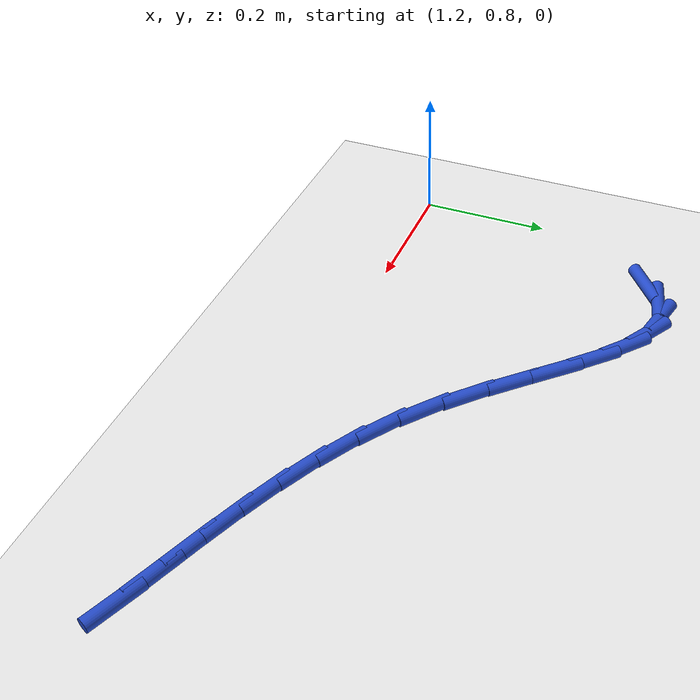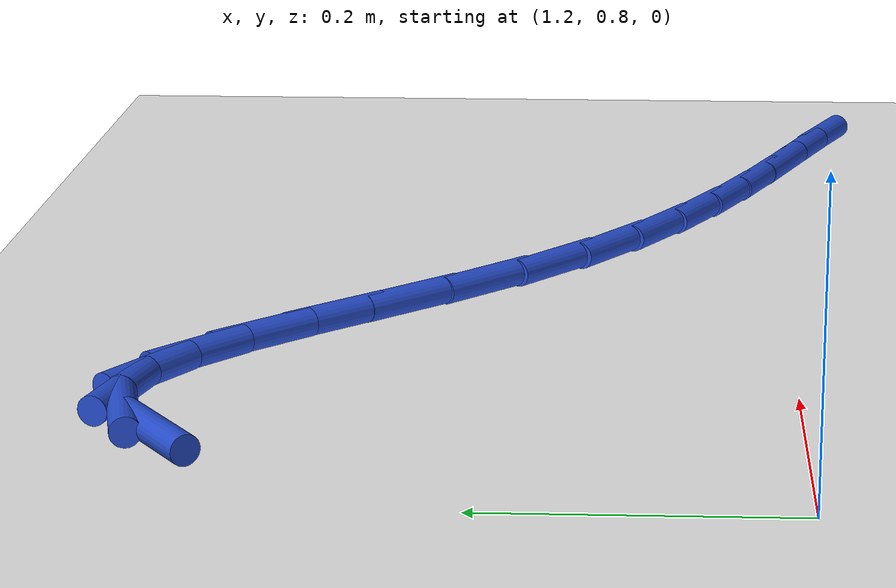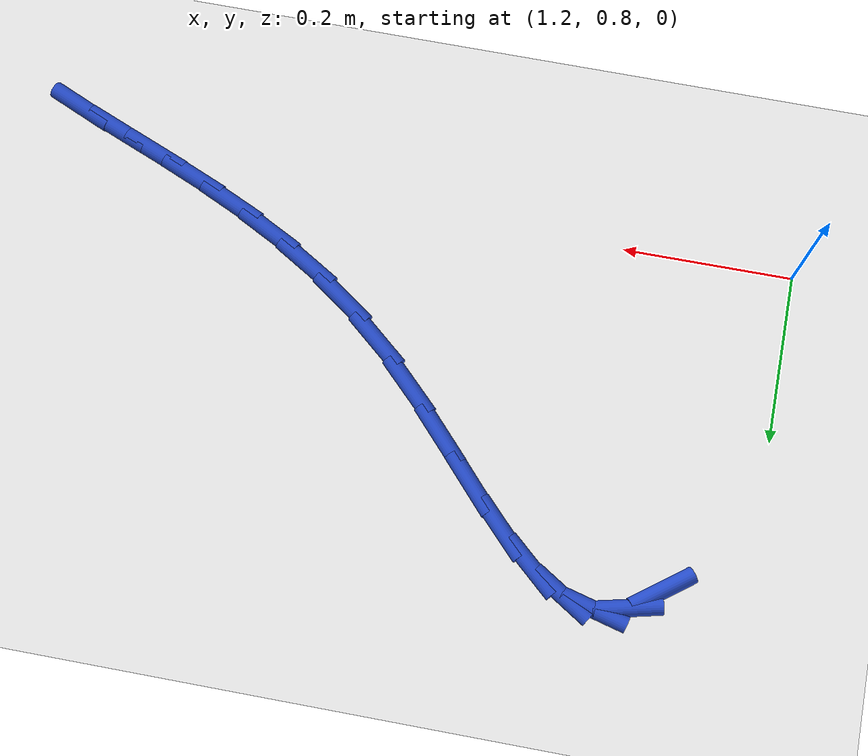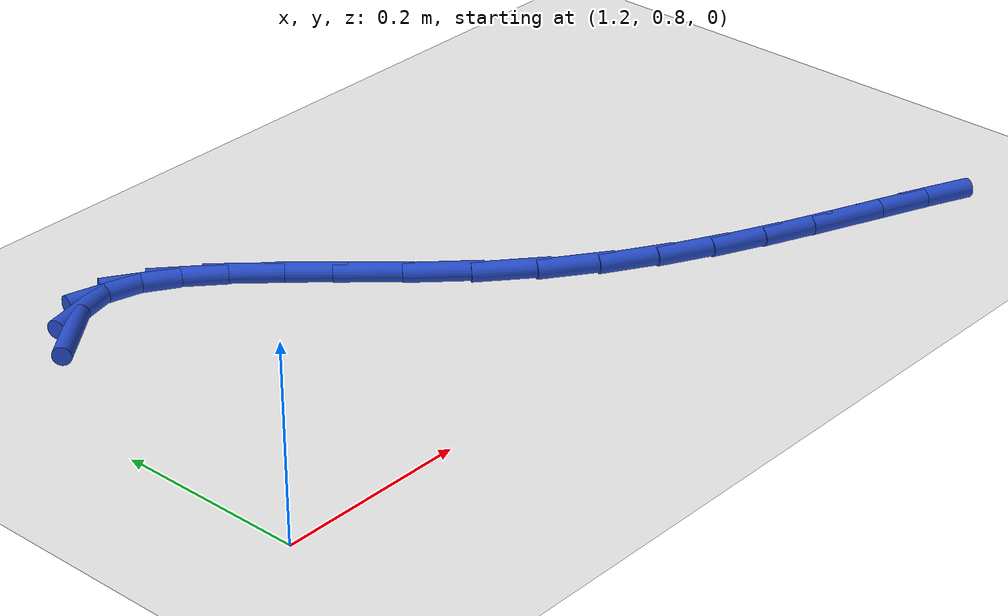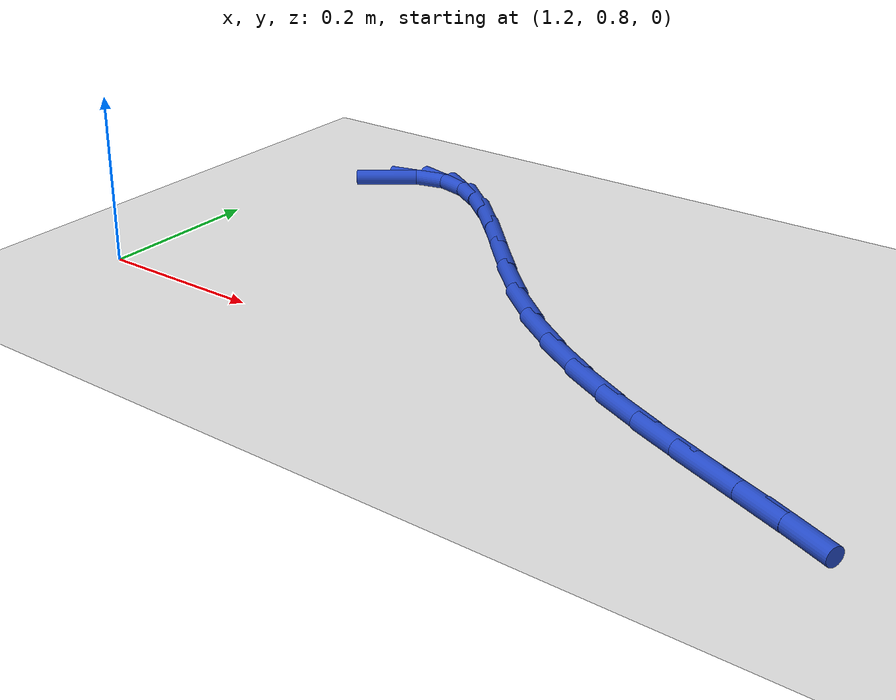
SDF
<sdf version="1.6">
 <world name="default">
  <model name="ground_plane">
   <static>1</static>
   <link name="link">
    <collision name="collision">
     <geometry><plane><normal>0 0 1</normal><size>100 100</size></plane></geometry>
     <surface><friction><ode><mu>100</mu><mu2>50</mu2></ode></friction></surface>
    </collision>
    <visual name="visual">
     <cast_shadows>0</cast_shadows>
     <geometry><plane><normal>0 0 1</normal><size>100 100</size></plane></geometry>
     <material>
      <script><uri>file://media/materials/scripts/gazebo.material</uri><name>Gazebo/WhiteGlow</name></script>
     </material>
    </visual>
   </link>
  </model>
  <model name="line">
   <link name="link_35">
    <pose>1.2969257213676955 1.1914034889081215 0.01 0 1.57 0.6425929764301397</pose>
    <collision name="collision">
     <geometry><cylinder><radius>0.01</radius><length>0.08</length></cylinder></geometry>
    </collision>
    <visual name="visual">
     <material>
      <script><name>Gazebo/Blue</name><uri>file://media/materials/scripts/gazebo.material</uri></script>
     </material>
     <geometry><cylinder><radius>0.01</radius><length>0.08</length></cylinder></geometry>
    </visual>
   </link>
   <link name="link_36">
    <pose>1.3323255644143026 1.2179031745195692 0.01 0 1.57 0.23117182751288756</pose>
    <collision name="collision">
     <geometry><cylinder><radius>0.01</radius><length>0.08</length></cylinder></geometry>
    </collision>
    <visual name="visual">
     <material>
      <script><name>Gazebo/Blue</name><uri>file://media/materials/scripts/gazebo.material</uri></script>
     </material>
     <geometry><cylinder><radius>0.01</radius><length>0.08</length></cylinder></geometry>
    </visual>
   </link>
   <link name="link_37">
    <pose>1.3687316749913365 1.226472436559535 0.01 0 1.57 -0.2560467390787924</pose>
    <collision name="collision">
     <geometry><cylinder><radius>0.01</radius><length>0.08</length></cylinder></geometry>
    </collision>
    <visual name="visual">
     <material>
      <script><name>Gazebo/Blue</name><uri>file://media/materials/scripts/gazebo.material</uri></script>
     </material>
     <geometry><cylinder><radius>0.01</radius><length>0.08</length></cylinder></geometry>
    </visual>
   </link>
   <link name="link_38">
    <pose>1.4065682904966756 1.216567077612201 0.01 0 1.57 -0.5660232831014738</pose>
    <collision name="collision">
     <geometry><cylinder><radius>0.01</radius><length>0.08</length></cylinder></geometry>
    </collision>
    <visual name="visual">
     <material>
      <script><name>Gazebo/Blue</name><uri>file://media/materials/scripts/gazebo.material</uri></script>
     </material>
     <geometry><cylinder><radius>0.01</radius><length>0.08</length></cylinder></geometry>
    </visual>
   </link>
   <link name="link_39">
    <pose>1.4458795568515859 1.1915897889593532 0.01 0 1.57 -0.7297121862824675</pose>
    <collision name="collision">
     <geometry><cylinder><radius>0.01</radius><length>0.08</length></cylinder></geometry>
    </collision>
    <visual name="visual">
     <material>
      <script><name>Gazebo/Blue</name><uri>file://media/materials/scripts/gazebo.material</uri></script>
     </material>
     <geometry><cylinder><radius>0.01</radius><length>0.08</length></cylinder></geometry>
    </visual>
   </link>
   <link name="link_40">
    <pose>1.4866961162823493 1.1550834849195244 0.01 0 1.57 -0.8100337775588168</pose>
    <collision name="collision">
     <geometry><cylinder><radius>0.01</radius><length>0.08</length></cylinder></geometry>
    </collision>
    <visual name="visual">
     <material>
      <script><name>Gazebo/Blue</name><uri>file://media/materials/scripts/gazebo.material</uri></script>
     </material>
     <geometry><cylinder><radius>0.01</radius><length>0.08</length></cylinder></geometry>
    </visual>
   </link>
   <link name="link_41">
    <pose>1.5290486110152515 1.1105910798112473 0.01 0 1.57 -0.8393711922237244</pose>
    <collision name="collision">
     <geometry><cylinder><radius>0.01</radius><length>0.08</length></cylinder></geometry>
    </collision>
    <visual name="visual">
     <material>
      <script><name>Gazebo/Blue</name><uri>file://media/materials/scripts/gazebo.material</uri></script>
     </material>
     <geometry><cylinder><radius>0.01</radius><length>0.08</length></cylinder></geometry>
    </visual>
   </link>
   <link name="link_42">
    <pose>1.5729676832765767 1.0616554879530562 0.01 0 1.57 -0.8306684665896843</pose>
    <collision name="collision">
     <geometry><cylinder><radius>0.01</radius><length>0.08</length></cylinder></geometry>
    </collision>
    <visual name="visual">
     <material>
      <script><name>Gazebo/Blue</name><uri>file://media/materials/scripts/gazebo.material</uri></script>
     </material>
     <geometry><cylinder><radius>0.01</radius><length>0.08</length></cylinder></geometry>
    </visual>
   </link>
   <link name="link_43">
    <pose>1.6184839752926072 1.0118196236634833 0.01 0 1.57 -0.7859183008323506</pose>
    <collision name="collision">
     <geometry><cylinder><radius>0.01</radius><length>0.08</length></cylinder></geometry>
    </collision>
    <visual name="visual">
     <material>
      <script><name>Gazebo/Blue</name><uri>file://media/materials/scripts/gazebo.material</uri></script>
     </material>
     <geometry><cylinder><radius>0.01</radius><length>0.08</length></cylinder></geometry>
    </visual>
   </link>
   <link name="link_44">
    <pose>1.6656281292896287 0.964626401261061 0.01 0 1.57 -0.7053604683465347</pose>
    <collision name="collision">
     <geometry><cylinder><radius>0.01</radius><length>0.08</length></cylinder></geometry>
    </collision>
    <visual name="visual">
     <material>
      <script><name>Gazebo/Blue</name><uri>file://media/materials/scripts/gazebo.material</uri></script>
     </material>
     <geometry><cylinder><radius>0.01</radius><length>0.08</length></cylinder></geometry>
    </visual>
   </link>
   <link name="link_45">
    <pose>1.714380977160737 0.9231136691036133 0.01 0 1.57 -0.6196559004188579</pose>
    <collision name="collision">
     <geometry><cylinder><radius>0.01</radius><length>0.08</length></cylinder></geometry>
    </collision>
    <visual name="visual">
     <material>
      <script><name>Gazebo/Blue</name><uri>file://media/materials/scripts/gazebo.material</uri></script>
     </material>
     <geometry><cylinder><radius>0.01</radius><length>0.08</length></cylinder></geometry>
    </visual>
   </link>
   <link name="link_46">
    <pose>1.7644359385053168 0.8874049773108945 0.01 0 1.57 -0.5440994701484362</pose>
    <collision name="collision">
     <geometry><cylinder><radius>0.01</radius><length>0.08</length></cylinder></geometry>
    </collision>
    <visual name="visual">
     <material>
      <script><name>Gazebo/Blue</name><uri>file://media/materials/scripts/gazebo.material</uri></script>
     </material>
     <geometry><cylinder><radius>0.01</radius><length>0.08</length></cylinder></geometry>
    </visual>
   </link>
   <link name="link_47">
    <pose>1.815383568519732 0.8565808532961623 0.01 0 1.57 -0.4812987626477115</pose>
    <collision name="collision">
     <geometry><cylinder><radius>0.01</radius><length>0.08</length></cylinder></geometry>
    </collision>
    <visual name="visual">
     <material>
      <script><name>Gazebo/Blue</name><uri>file://media/materials/scripts/gazebo.material</uri></script>
     </material>
     <geometry><cylinder><radius>0.01</radius><length>0.08</length></cylinder></geometry>
    </visual>
   </link>
   <link name="link_48">
    <pose>1.8668142920668012 0.8297205029187824 0.01 0 1.57 -0.4331467290565228</pose>
    <collision name="collision">
     <geometry><cylinder><radius>0.01</radius><length>0.08</length></cylinder></geometry>
    </collision>
    <visual name="visual">
     <material>
      <script><name>Gazebo/Blue</name><uri>file://media/materials/scripts/gazebo.material</uri></script>
     </material>
     <geometry><cylinder><radius>0.01</radius><length>0.08</length></cylinder></geometry>
    </visual>
   </link>
   <link name="link_49">
    <pose>1.9183185340093396 0.8059031320381218 0.01 0 1.57 -0.40102126294946877</pose>
    <collision name="collision">
     <geometry><cylinder><radius>0.01</radius><length>0.08</length></cylinder></geometry>
    </collision>
    <visual name="visual">
     <material>
      <script><name>Gazebo/Blue</name><uri>file://media/materials/scripts/gazebo.material</uri></script>
     </material>
     <geometry><cylinder><radius>0.01</radius><length>0.08</length></cylinder></geometry>
    </visual>
   </link>
   <link name="link_50">
    <pose>1.9694867192101648 0.7842079465135462 0.01 0 1.57 -0.3860466238513498</pose>
    <collision name="collision">
     <geometry><cylinder><radius>0.01</radius><length>0.08</length></cylinder></geometry>
    </collision>
    <visual name="visual">
     <material>
      <script><name>Gazebo/Blue</name><uri>file://media/materials/scripts/gazebo.material</uri></script>
     </material>
     <geometry><cylinder><radius>0.01</radius><length>0.08</length></cylinder></geometry>
    </visual>
   </link>
   <link name="link_51">
    <pose>2.0199092725320926 0.7637141522044222 0.01 0 1.57 -0.38933327146834834</pose>
    <collision name="collision">
     <geometry><cylinder><radius>0.01</radius><length>0.08</length></cylinder></geometry>
    </collision>
    <visual name="visual">
     <material>
      <script><name>Gazebo/Blue</name><uri>file://media/materials/scripts/gazebo.material</uri></script>
     </material>
     <geometry><cylinder><radius>0.01</radius><length>0.08</length></cylinder></geometry>
    </visual>
   </link>
   <link name="link_52">
    <pose>2.0691766188379397 0.7435009549701156 0.01 0 1.57 -0.4121204768248951</pose>
    <collision name="collision">
     <geometry><cylinder><radius>0.01</radius><length>0.08</length></cylinder></geometry>
    </collision>
    <visual name="visual">
     <material>
      <script><name>Gazebo/Blue</name><uri>file://media/materials/scripts/gazebo.material</uri></script>
     </material>
     <geometry><cylinder><radius>0.01</radius><length>0.08</length></cylinder></geometry>
    </visual>
   </link>
  </model>
 </world>
</sdf>
